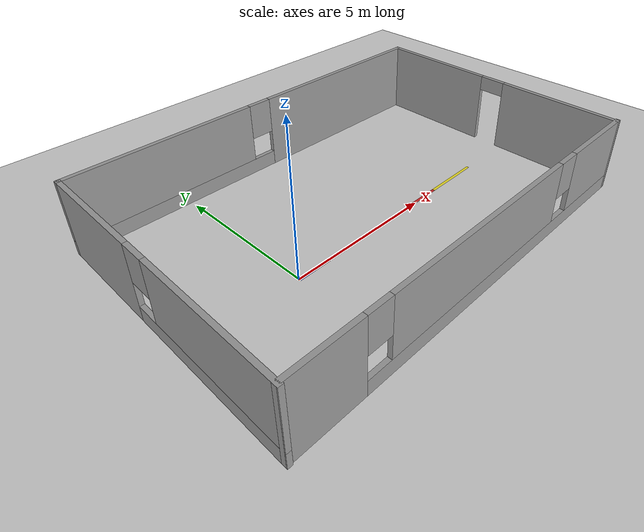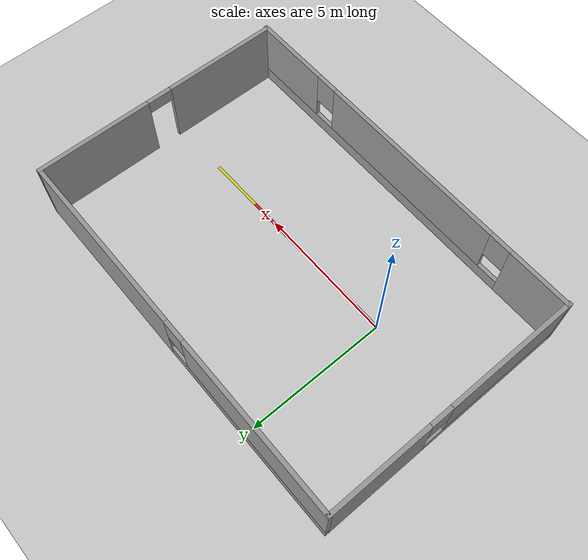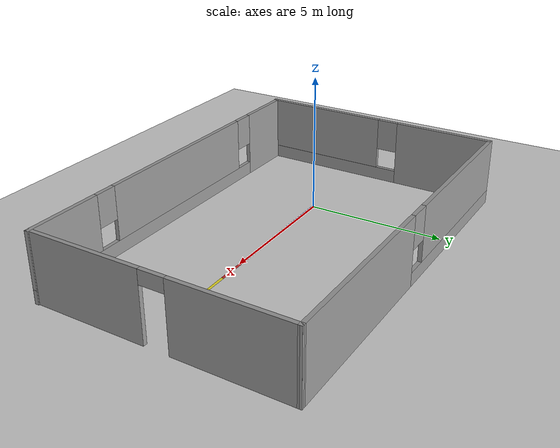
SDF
<sdf version="1.7">
 <world name="default">
  <light name="sun" type="directional">
   <pose>0 0 10 0 -0 0</pose>
   <diffuse>0.8 0.8 0.8 1</diffuse>
   <specular>0.2 0.2 0.2 1</specular>
   <attenuation>
    <range>1000</range>
    <constant>0.9</constant>
    <linear>0.01</linear>
    <quadratic>0.001</quadratic>
   </attenuation>
   <direction>-0.5 0.1 -0.9</direction>
   <spot><inner_angle>0</inner_angle><outer_angle>0</outer_angle><falloff>0</falloff></spot>
  </light>
  <model name="ground_plane">
   <static>1</static>
   <link name="link">
    <collision name="collision">
     <geometry><plane><normal>0 0 1</normal><size>100 100</size></plane></geometry>
     <surface>
      <contact><collide_bitmask>65535</collide_bitmask></contact>
      <friction><ode><mu>100</mu><mu2>50</mu2></ode></friction>
     </surface>
    </collision>
    <visual name="visual">
     <cast_shadows>0</cast_shadows>
     <geometry><plane><normal>0 0 1</normal><size>100 100</size></plane></geometry>
     <material>
      <script><uri>file://media/materials/scripts/gazebo.material</uri><name>Gazebo/Grey</name></script>
     </material>
    </visual>
   </link>
  </model>
  <gravity>0 0 -9.8</gravity>
  <magnetic_field>6e-06 2.3e-05 -4.2e-05</magnetic_field>
  <atmosphere type="adiabatic"/>
  <physics type="ode">
   <max_step_size>0.001</max_step_size>
   <real_time_factor>1</real_time_factor>
   <real_time_update_rate>1000</real_time_update_rate>
  </physics>
  <scene><ambient>0.4 0.4 0.4 1</ambient><background>0.7 0.7 0.7 1</background><shadows>1</shadows></scene>
  <spherical_coordinates>
   <surface_model>EARTH_WGS84</surface_model>
   <latitude_deg>0</latitude_deg>
   <longitude_deg>0</longitude_deg>
   <elevation>0</elevation>
   <heading_deg>0</heading_deg>
  </spherical_coordinates>
  <model name="model">
   <pose>3.22234 0.722612 0 0 -0 0</pose>
   <link name="Wall_4">
    <pose>0.035036 4.58239 0 0 -0 3.13647</pose>
    <visual name="Wall_4_Visual_0">
     <pose>-3.56385 0 1.25 0 -0 0</pose>
     <geometry><box><size>6.74802 0.15 2.5</size></box></geometry>
     <material>
      <script><uri>file://media/materials/scripts/gazebo.material</uri><name>Gazebo/Grey</name></script>
      <ambient>1 1 1 1</ambient>
     </material>
     <meta><layer>0</layer></meta>
    </visual>
    <collision name="Wall_4_Collision_0">
     <geometry><box><size>6.74802 0.15 2.5</size></box></geometry>
     <pose>-3.56385 0 1.25 0 -0 0</pose>
    </collision>
    <visual name="Wall_4_Visual_1">
     <pose>3.37401 0 0.25 0 -0 0</pose>
     <geometry><box><size>7.1277 0.15 0.5</size></box></geometry>
     <material>
      <script><uri>file://media/materials/scripts/gazebo.material</uri><name>Gazebo/Grey</name></script>
      <ambient>1 1 1 1</ambient>
     </material>
     <meta><layer>0</layer></meta>
    </visual>
    <collision name="Wall_4_Collision_1">
     <geometry><box><size>7.1277 0.15 0.5</size></box></geometry>
     <pose>3.37401 0 0.25 0 -0 0</pose>
    </collision>
    <visual name="Wall_4_Visual_2">
     <pose>3.77401 0 1.5 0 -0 0</pose>
     <geometry><box><size>6.3277 0.15 2</size></box></geometry>
     <material>
      <script><uri>file://media/materials/scripts/gazebo.material</uri><name>Gazebo/Grey</name></script>
      <ambient>1 1 1 1</ambient>
     </material>
     <meta><layer>0</layer></meta>
    </visual>
    <collision name="Wall_4_Collision_2">
     <geometry><box><size>6.3277 0.15 2</size></box></geometry>
     <pose>3.77401 0 1.5 0 -0 0</pose>
    </collision>
    <visual name="Wall_4_Visual_3">
     <pose>0.210162 0 1.9 0 -0 0</pose>
     <geometry><box><size>0.8 0.15 1.2</size></box></geometry>
     <material>
      <script><uri>file://media/materials/scripts/gazebo.material</uri><name>Gazebo/Grey</name></script>
      <ambient>1 1 1 1</ambient>
     </material>
     <meta><layer>0</layer></meta>
    </visual>
    <collision name="Wall_4_Collision_3">
     <geometry><box><size>0.8 0.15 1.2</size></box></geometry>
     <pose>0.210162 0 1.9 0 -0 0</pose>
    </collision>
   </link>
   <link name="Wall_5">
    <pose>-6.863 0.000238 0 0 -0 -1.57847</pose>
    <visual name="Wall_5_Visual_0">
     <pose>-2.80822 0 1.25 0 -0 0</pose>
     <geometry><box><size>3.69813 0.15 2.5</size></box></geometry>
     <material>
      <script><uri>file://media/materials/scripts/gazebo.material</uri><name>Gazebo/Grey</name></script>
      <ambient>1 1 1 1</ambient>
     </material>
     <meta><layer>0</layer></meta>
    </visual>
    <collision name="Wall_5_Collision_0">
     <geometry><box><size>3.69813 0.15 2.5</size></box></geometry>
     <pose>-2.80822 0 1.25 0 -0 0</pose>
    </collision>
    <visual name="Wall_5_Visual_1">
     <pose>1.84907 0 0.25 0 -0 0</pose>
     <geometry><box><size>5.61644 0.15 0.5</size></box></geometry>
     <material>
      <script><uri>file://media/materials/scripts/gazebo.material</uri><name>Gazebo/Grey</name></script>
      <ambient>1 1 1 1</ambient>
     </material>
     <meta><layer>0</layer></meta>
    </visual>
    <collision name="Wall_5_Collision_1">
     <geometry><box><size>5.61644 0.15 0.5</size></box></geometry>
     <pose>1.84907 0 0.25 0 -0 0</pose>
    </collision>
    <visual name="Wall_5_Visual_2">
     <pose>2.24907 0 1.5 0 -0 0</pose>
     <geometry><box><size>4.81644 0.15 2</size></box></geometry>
     <material>
      <script><uri>file://media/materials/scripts/gazebo.material</uri><name>Gazebo/Grey</name></script>
      <ambient>1 1 1 1</ambient>
     </material>
     <meta><layer>0</layer></meta>
    </visual>
    <collision name="Wall_5_Collision_2">
     <geometry><box><size>4.81644 0.15 2</size></box></geometry>
     <pose>2.24907 0 1.5 0 -0 0</pose>
    </collision>
    <visual name="Wall_5_Visual_3">
     <pose>-0.559154 0 1.9 0 -0 0</pose>
     <geometry><box><size>0.8 0.15 1.2</size></box></geometry>
     <material>
      <script><uri>file://media/materials/scripts/gazebo.material</uri><name>Gazebo/Grey</name></script>
      <ambient>1 1 1 1</ambient>
     </material>
     <meta><layer>0</layer></meta>
    </visual>
    <collision name="Wall_5_Collision_3">
     <geometry><box><size>0.8 0.15 1.2</size></box></geometry>
     <pose>-0.559154 0 1.9 0 -0 0</pose>
    </collision>
   </link>
   <link name="Wall_6">
    <pose>-0.035321 -4.58191 0 0 -0 -0.005126</pose>
    <visual name="Wall_6_Visual_0">
     <pose>-5.77985 0 1.25 0 -0 0</pose>
     <geometry><box><size>2.31602 0.15 2.5</size></box></geometry>
     <material>
      <script><uri>file://media/materials/scripts/gazebo.material</uri><name>Gazebo/Grey</name></script>
      <ambient>1 1 1 1</ambient>
     </material>
     <meta><layer>0</layer></meta>
    </visual>
    <collision name="Wall_6_Collision_0">
     <geometry><box><size>2.31602 0.15 2.5</size></box></geometry>
     <pose>-5.77985 0 1.25 0 -0 0</pose>
    </collision>
    <visual name="Wall_6_Visual_1">
     <pose>1.15801 0 0.25 0 -0 0</pose>
     <geometry><box><size>11.5597 0.15 0.5</size></box></geometry>
     <material>
      <script><uri>file://media/materials/scripts/gazebo.material</uri><name>Gazebo/Grey</name></script>
      <ambient>1 1 1 1</ambient>
     </material>
     <meta><layer>0</layer></meta>
    </visual>
    <collision name="Wall_6_Collision_1">
     <geometry><box><size>11.5597 0.15 0.5</size></box></geometry>
     <pose>1.15801 0 0.25 0 -0 0</pose>
    </collision>
    <visual name="Wall_6_Visual_2">
     <pose>-0.281241 0 1.5 0 -0 0</pose>
     <geometry><box><size>7.0812 0.15 2</size></box></geometry>
     <material>
      <script><uri>file://media/materials/scripts/gazebo.material</uri><name>Gazebo/Grey</name></script>
      <ambient>1 1 1 1</ambient>
     </material>
     <meta><layer>0</layer></meta>
    </visual>
    <collision name="Wall_6_Collision_2">
     <geometry><box><size>7.0812 0.15 2</size></box></geometry>
     <pose>-0.281241 0 1.5 0 -0 0</pose>
    </collision>
    <visual name="Wall_6_Visual_3">
     <pose>5.49861 0 1.5 0 -0 0</pose>
     <geometry><box><size>2.8785 0.15 2</size></box></geometry>
     <material>
      <script><uri>file://media/materials/scripts/gazebo.material</uri><name>Gazebo/Grey</name></script>
      <ambient>1 1 1 1</ambient>
     </material>
     <meta><layer>0</layer></meta>
    </visual>
    <collision name="Wall_6_Collision_3">
     <geometry><box><size>2.8785 0.15 2</size></box></geometry>
     <pose>5.49861 0 1.5 0 -0 0</pose>
    </collision>
    <visual name="Wall_6_Visual_4">
     <pose>-4.22184 0 1.9 0 -0 0</pose>
     <geometry><box><size>0.8 0.15 1.2</size></box></geometry>
     <material>
      <script><uri>file://media/materials/scripts/gazebo.material</uri><name>Gazebo/Grey</name></script>
      <ambient>1 1 1 1</ambient>
     </material>
     <meta><layer>0</layer></meta>
    </visual>
    <collision name="Wall_6_Collision_4">
     <geometry><box><size>0.8 0.15 1.2</size></box></geometry>
     <pose>-4.22184 0 1.9 0 -0 0</pose>
    </collision>
    <visual name="Wall_6_Visual_5">
     <pose>3.65936 0 1.9 0 -0 0</pose>
     <geometry><box><size>0.8 0.15 1.2</size></box></geometry>
     <material>
      <script><uri>file://media/materials/scripts/gazebo.material</uri><name>Gazebo/Grey</name></script>
      <ambient>1 1 1 1</ambient>
     </material>
     <meta><layer>0</layer></meta>
    </visual>
    <collision name="Wall_6_Collision_5">
     <geometry><box><size>0.8 0.15 1.2</size></box></geometry>
     <pose>3.65936 0 1.9 0 -0 0</pose>
    </collision>
   </link>
   <link name="Wall_7">
    <pose>6.84513 -0.034941 0 0 -0 1.55928</pose>
    <visual name="Wall_7_Visual_0">
     <pose>-2.55408 0 1.25 0 -0 0</pose>
     <geometry><box><size>4.20675 0.15 2.5</size></box></geometry>
     <material>
      <script><uri>file://media/materials/scripts/gazebo.material</uri><name>Gazebo/Grey</name></script>
      <ambient>1 1 1 1</ambient>
     </material>
     <meta><layer>0</layer></meta>
    </visual>
    <collision name="Wall_7_Collision_0">
     <geometry><box><size>4.20675 0.15 2.5</size></box></geometry>
     <pose>-2.55408 0 1.25 0 -0 0</pose>
    </collision>
    <visual name="Wall_7_Visual_1">
     <pose>2.55337 0 1.25 0 -0 0</pose>
     <geometry><box><size>4.20816 0.15 2.5</size></box></geometry>
     <material>
      <script><uri>file://media/materials/scripts/gazebo.material</uri><name>Gazebo/Grey</name></script>
      <ambient>1 1 1 1</ambient>
     </material>
     <meta><layer>0</layer></meta>
    </visual>
    <collision name="Wall_7_Collision_1">
     <geometry><box><size>4.20816 0.15 2.5</size></box></geometry>
     <pose>2.55337 0 1.25 0 -0 0</pose>
    </collision>
    <visual name="Wall_7_Visual_2">
     <pose>-0.000708 0 2.25 0 -0 0</pose>
     <geometry><box><size>0.9 0.15 0.5</size></box></geometry>
     <material>
      <script><uri>file://media/materials/scripts/gazebo.material</uri><name>Gazebo/Grey</name></script>
      <ambient>1 1 1 1</ambient>
     </material>
     <meta><layer>0</layer></meta>
    </visual>
    <collision name="Wall_7_Collision_2">
     <geometry><box><size>0.9 0.15 0.5</size></box></geometry>
     <pose>-0.000708 0 2.25 0 -0 0</pose>
    </collision>
   </link>
   <static>1</static>
  </model>
  <model name="blue line">
   <static>1</static>
   <link name="link_ground">
    <collision name="collision">
     <geometry><plane><normal>0 0 1</normal><size>0.1 2</size></plane></geometry>
     <surface><friction><ode><mu>100</mu><mu2>50</mu2></ode></friction></surface>
    </collision>
    <visual name="visual_ground">
     <cast_shadows>0</cast_shadows>
     <geometry><plane><normal>0 0 1</normal><size>0.1 2</size></plane></geometry>
     <material>
      <script><uri>file://media/materials/scripts/gazebo.material</uri><name>Gazebo/Blue</name></script>
     </material>
    </visual>
   </link>
   <pose>1 -0.018 0.001 0 -0 1.58</pose>
  </model>
  <model name="green line">
   <static>1</static>
   <link name="link_ground">
    <collision name="collision">
     <geometry><plane><normal>0 0 1</normal><size>0.1 2</size></plane></geometry>
     <surface><friction><ode><mu>100</mu><mu2>50</mu2></ode></friction></surface>
    </collision>
    <visual name="visual_ground">
     <cast_shadows>0</cast_shadows>
     <geometry><plane><normal>0 0 1</normal><size>0.1 2</size></plane></geometry>
     <material>
      <script><uri>file://media/materials/scripts/gazebo.material</uri><name>Gazebo/Green</name></script>
     </material>
    </visual>
   </link>
   <pose>3 0 0.001 0 -0 1.58</pose>
  </model>
  <model name="red line">
   <static>1</static>
   <link name="link_ground">
    <collision name="collision">
     <geometry><plane><normal>0 0 1</normal><size>0.1 2</size></plane></geometry>
     <surface><friction><ode><mu>100</mu><mu2>50</mu2></ode></friction></surface>
    </collision>
    <visual name="visual_ground">
     <cast_shadows>0</cast_shadows>
     <geometry><plane><normal>0 0 1</normal><size>0.1 2</size></plane></geometry>
     <material>
      <script><uri>file://media/materials/scripts/gazebo.material</uri><name>Gazebo/Red</name></script>
     </material>
    </visual>
   </link>
   <pose>5 0.02 0.001 0 -0 1.58</pose>
  </model>
  <model name="yellow line">
   <static>1</static>
   <link name="link_ground">
    <collision name="collision">
     <geometry><plane><normal>0 0 1</normal><size>0.1 2</size></plane></geometry>
     <surface><friction><ode><mu>100</mu><mu2>50</mu2></ode></friction></surface>
    </collision>
    <visual name="visual_ground">
     <cast_shadows>0</cast_shadows>
     <geometry><plane><normal>0 0 1</normal><size>0.1 2</size></plane></geometry>
     <material>
      <script><uri>file://media/materials/scripts/gazebo.material</uri><name>Gazebo/Yellow</name></script>
     </material>
    </visual>
   </link>
   <pose>7 0.037 0.001 0 -0 1.58</pose>
  </model>
 </world>
</sdf>
